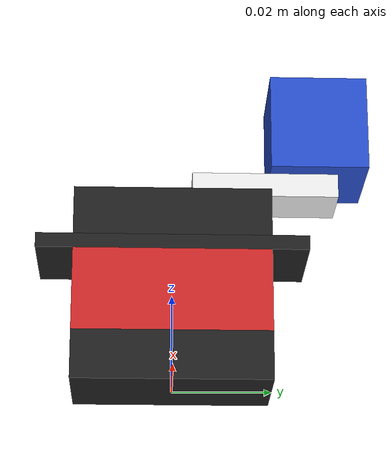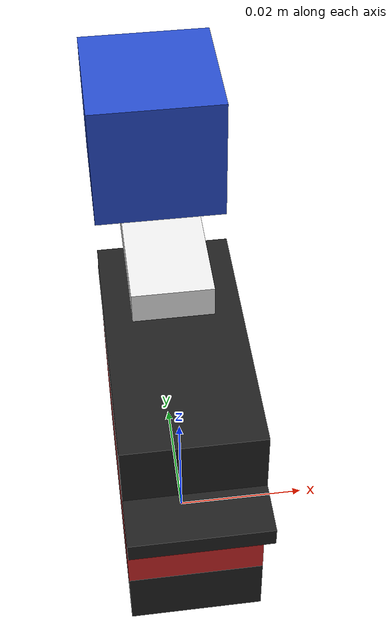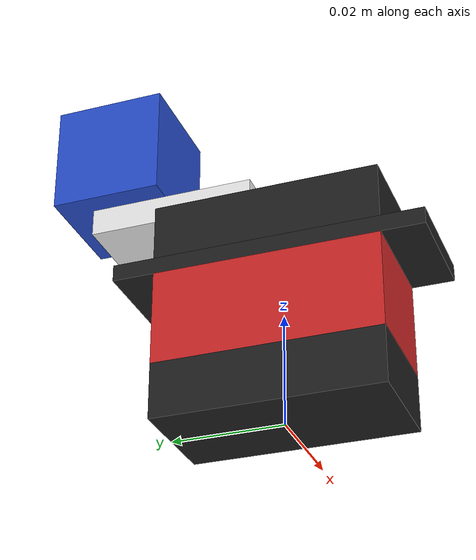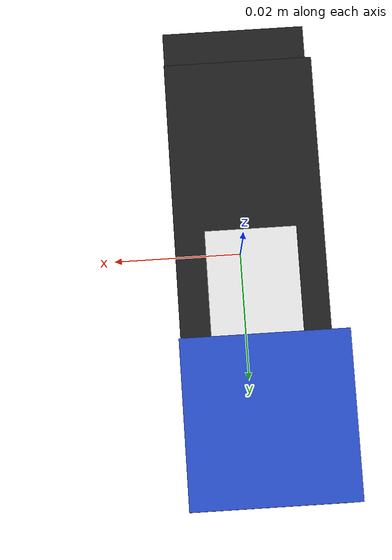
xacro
<?xml version="1.0"?>
<robot name="servo" xmlns:xacro="http://www.ros.org/wiki/xacro" >
  <!--Constant for the servo.xacro-->
  <xacro:property name="jnt_friction" value="0.015"/>
  <xacro:property name="jnt_damping" value="0.03"/>
  <xacro:property name="eff_lim" value="2.0"/>
  <xacro:property name="vel_lim" value="${pi}"/>

  <xacro:property name="lx_u0" value="0.02"/>
  <xacro:property name="ly_u0" value="0.04"/>
  <xacro:property name="lz_u0" value="0.01"/>

  <xacro:property name="lx_u1" value="0.02"/>
  <xacro:property name="ly_u1" value="0.04"/>
  <xacro:property name="lz_u1" value="0.017"/>

  <xacro:property name="lx_u2" value="0.02"/>
  <xacro:property name="ly_u2" value="0.055"/>
  <xacro:property name="lz_u2" value="0.003"/>

  <xacro:property name="lx_u3" value="0.02"/>
  <xacro:property name="ly_u3" value="0.04"/>
  <xacro:property name="lz_u3" value="0.01"/>

  <xacro:property name="lx_h0" value="0.012"/>
  <xacro:property name="ly_h0" value="0.03"/>
  <xacro:property name="lz_h0" value="0.005"/>

  <xacro:property name="lx_h1" value="0.02"/>
  <xacro:property name="ly_h1" value="0.02"/>
  <xacro:property name="lz_h1" value="0.02"/>

  <xacro:include filename="$(find ds3218_sim)/model/urdf/servo.gazebo" />
  <xacro:include filename="$(find ds3218_sim)/model/urdf/utilities.xacro"/>
  <xacro:include filename="$(find ds3218_sim)/model/materials/materials.xacro"/>
  <!--the fixed world link-->
  <link name="world"/>
  <!--the fixed link from world to servo iteself-->
  <joint name="world_to_u0" type="fixed">
    <origin xyz="0 0 0" rpy="0 0 0"/>
    <parent link="world" />
    <child link="u0" />
  </joint>

  <link name="u0" >
    <visual>
      <origin xyz="0 0 ${lz_u0/2}" rpy="0 0 0"/>
      <geometry>
        <box size="${lx_u0} ${ly_u0} ${lz_u0}"/>
      </geometry>
      <material name="black"/>
    </visual>
    <inertial>
      <origin xyz="0 0 ${lz_u0/2}" rpy="0 0 0"/>
      <xacro:box_inertia  lenx="${lx_u0}" leny="${ly_u0}" lenz="${lz_u0}" />
    </inertial>
    <collision>
      <origin xyz="0 0 ${lz_u0/2}" rpy="0 0 0"/>
      <geometry>
        <box size="${lx_u0} ${ly_u0} ${lz_u0}"/>
      </geometry>
    </collision>
  </link>

  <joint name="fix_1" type="fixed" >
    <parent link="u0"/>
    <child link="u1"/>
    <origin xyz="0 0 ${lz_u0}"/>
    <axis xyz="0 0 1"/>
  </joint>

  <link name="u1" >
    <visual>
      <origin xyz="0 0 ${lz_u1/2}" rpy="0 0 0"/>
      <geometry>
        <box size="${lx_u1} ${ly_u1} ${lz_u1}"/>
      </geometry>
      <material name="red"/>
    </visual>
    <inertial>
      <origin xyz="0 0 ${lz_u1/2}" rpy="0 0 0"/>
      <xacro:box_inertia  lenx="${lx_u1}" leny="${ly_u1}" lenz="${lz_u1}" />
    </inertial>
    <collision>
      <origin xyz="0 0 ${lz_u1/2}" rpy="0 0 0"/>
      <geometry>
        <box size="${lx_u1} ${ly_u1} ${lz_u1}"/>
      </geometry>
    </collision>
  </link>

  <joint name="fix_2" type="fixed" >
    <parent link="u1"/>
    <child link="u2"/>
    <origin xyz="0 0 ${lz_u1}"/>
    <axis xyz="0 0 1"/>
  </joint>

  <link name="u2" >
    <visual>
      <origin xyz="0 0 ${lz_u2/2}" rpy="0 0 0"/>
      <geometry>
        <box size="${lx_u2} ${ly_u2} ${lz_u2}"/>
      </geometry>
      <material name="black"/>
    </visual>
    <inertial>
      <origin xyz="0 0 ${lz_u2/2}" rpy="0 0 0"/>
      <xacro:box_inertia  lenx="${lx_u2}" leny="${ly_u2}" lenz="${lz_u2}" />
    </inertial>
    <collision>
      <origin xyz="0 0 ${lz_u2/2}" rpy="0 0 0"/>
      <geometry>
        <box size="${lx_u2} ${ly_u2} ${lz_u2}"/>
      </geometry>
    </collision>
  </link>

  <joint name="fix_3" type="fixed" >
    <parent link="u2"/>
    <child link="u3"/>
    <origin xyz="0 0 ${lz_u2}"/>
    <axis xyz="0 0 1"/>
  </joint>

  <link name="u3" >
    <visual>
      <origin xyz="0 0 ${lz_u3/2}" rpy="0 0 0"/>
      <geometry>
        <box size="${lx_u3} ${ly_u3} ${lz_u3}"/>
      </geometry>
      <material name="black"/>
    </visual>
    <inertial>
      <origin xyz="0 0 ${lz_u3/2}" rpy="0 0 0"/>
      <xacro:box_inertia  lenx="${lx_u3}" leny="${ly_u3}" lenz="${lz_u3}" />
    </inertial>
    <collision>
      <origin xyz="0 0 ${lz_u3/2}" rpy="0 0 0"/>
      <geometry>
        <box size="${lx_u3} ${ly_u3} ${lz_u3}"/>
      </geometry>
    </collision>
  </link>

  <!--define the joint1 -->
  <joint name="joint1" type="revolute" >
    <parent link="u3"/>
    <child link="h0"/>
    <origin xyz= "0 ${ly_u3/4} ${lz_u3}"/>
    <axis xyz="0 0 1"/>
    <dynamics damping="${jnt_damping}" friction="${jnt_friction}"/>
    <limit effort="${eff_lim}" velocity="${vel_lim}" lower="${-2*pi/4}" upper="${2*pi/4}" />
    <safety_controller k_velocity="10" k_position="15" soft_lower_limit="-1.56" soft_upper_limit="1.56" />
  </joint>

  <transmission name="joint1_tran">
    <type>transmission_interface/SimpleTransmission</type>
    <joint name="joint1">
      <hardwareInterface>hardware_interface/EffortJointInterface</hardwareInterface>
    </joint>
    <actuator name="joint1_motor">
      <hardwareInterface>hardware_interface/EffortJointInterface</hardwareInterface>
      <mechanicalReduction>1</mechanicalReduction>
    </actuator>
  </transmission>

  <link name="h0" >
    <visual>
      <origin xyz="0 ${ly_h0/2-lx_h0/2} ${lz_h0/2}" rpy="0 0 0"/>
      <geometry>
        <box size="${lx_h0} ${ly_h0} ${lz_h0}"/>
      </geometry>
      <material name="white"/>
    </visual>
    <inertial>
      <origin xyz="0 ${ly_h0/2-lx_h0/2} ${lz_h0/2}" rpy="0 0 0"/>
      <xacro:box_inertia  lenx="${lx_h0}" leny="${ly_h0}" lenz="${lz_h0}" />
    </inertial>
    <collision>
      <origin xyz="0 ${ly_h0/2-lx_h0/2} ${lz_h0/2}" rpy="0 0 0"/>
      <geometry>
        <box size="${lx_h0} ${ly_h0} ${lz_h0}"/>
      </geometry>
    </collision>
  </link>

  <!--define the joint2 for changing the inertia of the rotating link-->
  <joint name="joint2" type="prismatic" >
    <parent link="h0"/>
    <child link="h1"/>
    <origin xyz="0 0 ${lz_h0}"/>
    <axis xyz="0 1 0"/>
    <dynamics damping="0.7" friction="0.03"/>
    <limit effort="${eff_lim}" velocity="${vel_lim}" lower="${-ly_h0}" upper="${ly_h1}" />
  </joint>
  <transmission name="joint2_tran">
    <type>transmission_interface/SimpleTransmission</type>
    <joint name="joint2">
      <hardwareInterface>hardware_interface/EffortJointInterface</hardwareInterface>
    </joint>
    <actuator name="joint2_motor">
      <hardwareInterface>hardware_interface/EffortJointInterface</hardwareInterface>
      <mechanicalReduction>1</mechanicalReduction>
    </actuator>
  </transmission>

  <link name="h1" >
    <visual>
      <origin xyz="0 ${ly_h0-lx_h1/2} ${lz_h1/2}" rpy="0 0 0"/>
      <geometry>
        <box size="${lx_h1} ${ly_h1} ${lz_h1}"/>
      </geometry>
      <material name="blue"/>
    </visual>
    <inertial>
      <origin xyz="0 ${ly_h0-lx_h1/2} ${lz_h1/2}" rpy="0 0 0"/>
      <xacro:box_inertia  lenx="${lx_h1}" leny="${ly_h1}" lenz="${lz_h1}" />
    </inertial>
    <collision>
      <origin xyz="0 0 ${lz_h1/2}" rpy="0 0 0"/>
      <geometry>
        <box size="${lx_h1} ${ly_h1} ${lz_h1}"/>
      </geometry>
    </collision>
  </link>

</robot>

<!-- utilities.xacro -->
<robot xmlns:xacro="http://www.ros.org/wiki/xacro">
  <xacro:property name="density" value="2500"/>
  <xacro:macro name="box_inertia" params="lenx leny lenz">
    <xacro:property name="mass" value="${density * lenx * leny * lenz}"/>
    <mass value="${mass}" />
    <inertia
      ixx="${mass*(lenz*lenz+leny*leny)/12.0}" ixy="0.0" ixz="0.0"
      iyy="${mass*(lenz*lenz+lenx*lenx)/12.0}" iyz="0.0"
      izz="${mass*(lenx*lenx+leny*leny)/12.0}" />
  </xacro:macro>
</robot>
